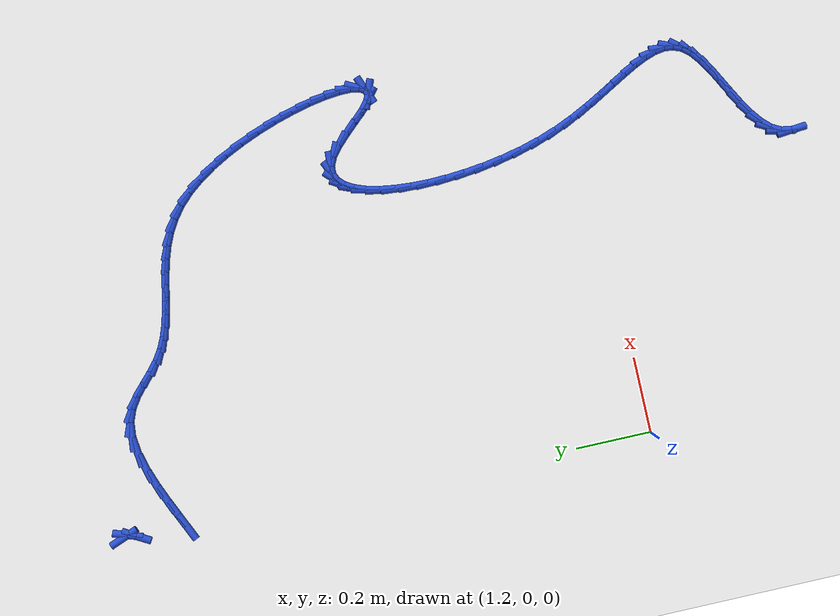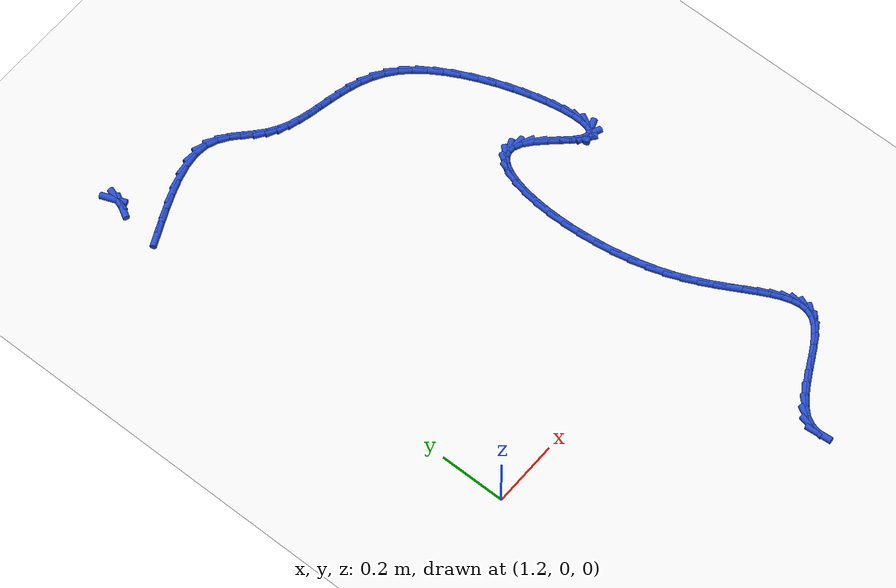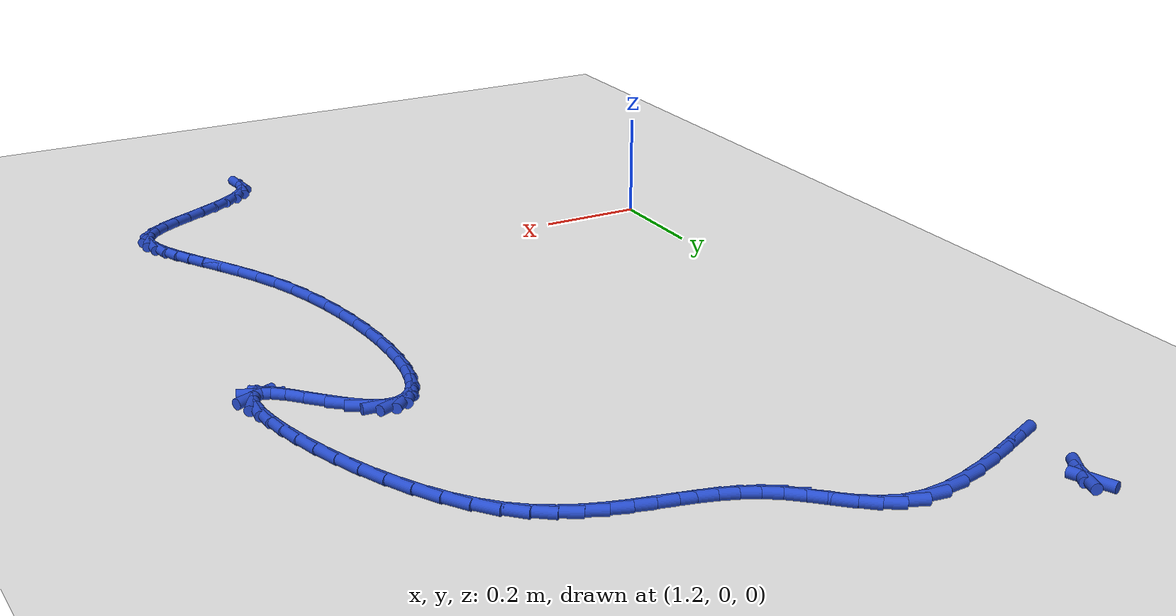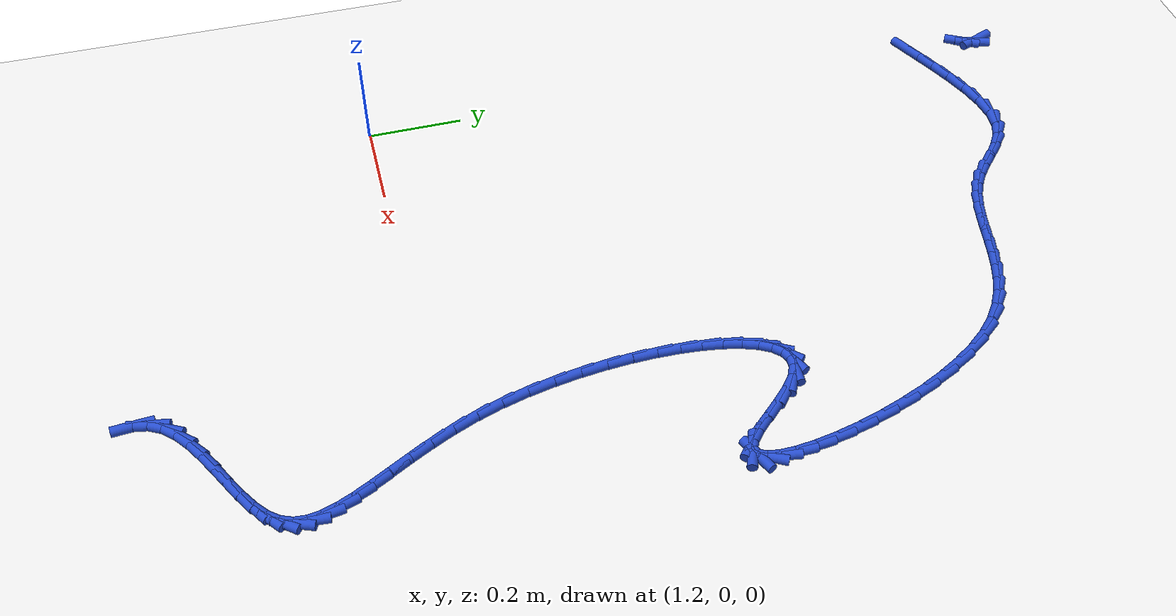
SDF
<sdf version="1.6">
 <world name="default">
  <model name="ground_plane">
   <static>1</static>
   <link name="link">
    <collision name="collision">
     <geometry><plane><normal>0 0 1</normal><size>100 100</size></plane></geometry>
     <surface><friction><ode><mu>100</mu><mu2>50</mu2></ode></friction></surface>
    </collision>
    <visual name="visual">
     <cast_shadows>0</cast_shadows>
     <geometry><plane><normal>0 0 1</normal><size>100 100</size></plane></geometry>
     <material>
      <script><uri>file://media/materials/scripts/gazebo.material</uri><name>Gazebo/WhiteGlow</name></script>
     </material>
    </visual>
   </link>
  </model>
  <model name="line">
   <link name="link_60">
    <pose>1.2385042066645906 1.4053721691312089 0.01 0 1.57 -1.2046894658953824</pose>
    <collision name="collision">
     <geometry><cylinder><radius>0.01</radius><length>0.08</length></cylinder></geometry>
    </collision>
    <visual name="visual">
     <material>
      <script><name>Gazebo/Blue</name><uri>file://media/materials/scripts/gazebo.material</uri></script>
     </material>
     <geometry><cylinder><radius>0.01</radius><length>0.08</length></cylinder></geometry>
    </visual>
   </link>
   <link name="link_61">
    <pose>1.242721266232431 1.394372801080817 0.01 0 1.57 1.2348689751261193</pose>
    <collision name="collision">
     <geometry><cylinder><radius>0.01</radius><length>0.08</length></cylinder></geometry>
    </collision>
    <visual name="visual">
     <material>
      <script><name>Gazebo/Blue</name><uri>file://media/materials/scripts/gazebo.material</uri></script>
     </material>
     <geometry><cylinder><radius>0.01</radius><length>0.08</length></cylinder></geometry>
    </visual>
   </link>
   <link name="link_62">
    <pose>1.2351722170475903 1.3727522731677408 0.01 0 1.57 1.0527649954211737</pose>
    <collision name="collision">
     <geometry><cylinder><radius>0.01</radius><length>0.08</length></cylinder></geometry>
    </collision>
    <visual name="visual">
     <material>
      <script><name>Gazebo/Blue</name><uri>file://media/materials/scripts/gazebo.material</uri></script>
     </material>
     <geometry><cylinder><radius>0.01</radius><length>0.08</length></cylinder></geometry>
    </visual>
   </link>
   <link name="link_71">
    <pose>1.2289863362273763 1.2381242181041978 0.01 0 1.57 0.4261892374639192</pose>
    <collision name="collision">
     <geometry><cylinder><radius>0.01</radius><length>0.08</length></cylinder></geometry>
    </collision>
    <visual name="visual">
     <material>
      <script><name>Gazebo/Blue</name><uri>file://media/materials/scripts/gazebo.material</uri></script>
     </material>
     <geometry><cylinder><radius>0.01</radius><length>0.08</length></cylinder></geometry>
    </visual>
   </link>
   <link name="link_72">
    <pose>1.2680139789110771 1.2558434218094288 0.01 0 1.57 0.41933460419938257</pose>
    <collision name="collision">
     <geometry><cylinder><radius>0.01</radius><length>0.08</length></cylinder></geometry>
    </collision>
    <visual name="visual">
     <material>
      <script><name>Gazebo/Blue</name><uri>file://media/materials/scripts/gazebo.material</uri></script>
     </material>
     <geometry><cylinder><radius>0.01</radius><length>0.08</length></cylinder></geometry>
    </visual>
   </link>
   <link name="link_73">
    <pose>1.3111947141028244 1.2750923006333374 0.01 0 1.57 0.38961680345681954</pose>
    <collision name="collision">
     <geometry><cylinder><radius>0.01</radius><length>0.08</length></cylinder></geometry>
    </collision>
    <visual name="visual">
     <material>
      <script><name>Gazebo/Blue</name><uri>file://media/materials/scripts/gazebo.material</uri></script>
     </material>
     <geometry><cylinder><radius>0.01</radius><length>0.08</length></cylinder></geometry>
    </visual>
   </link>
   <link name="link_74">
    <pose>1.3567951283821853 1.2938161518496252 0.01 0 1.57 0.33559241292047726</pose>
    <collision name="collision">
     <geometry><cylinder><radius>0.01</radius><length>0.08</length></cylinder></geometry>
    </collision>
    <visual name="visual">
     <material>
      <script><name>Gazebo/Blue</name><uri>file://media/materials/scripts/gazebo.material</uri></script>
     </material>
     <geometry><cylinder><radius>0.01</radius><length>0.08</length></cylinder></geometry>
    </visual>
   </link>
   <link name="link_75">
    <pose>1.4030818083287293 1.3099602727319932 0.01 0 1.57 0.2491311210069129</pose>
    <collision name="collision">
     <geometry><cylinder><radius>0.01</radius><length>0.08</length></cylinder></geometry>
    </collision>
    <visual name="visual">
     <material>
      <script><name>Gazebo/Blue</name><uri>file://media/materials/scripts/gazebo.material</uri></script>
     </material>
     <geometry><cylinder><radius>0.01</radius><length>0.08</length></cylinder></geometry>
    </visual>
   </link>
   <link name="link_76">
    <pose>1.448321340522023 1.3214699605541422 0.01 0 1.57 0.11305027568607978</pose>
    <collision name="collision">
     <geometry><cylinder><radius>0.01</radius><length>0.08</length></cylinder></geometry>
    </collision>
    <visual name="visual">
     <material>
      <script><name>Gazebo/Blue</name><uri>file://media/materials/scripts/gazebo.material</uri></script>
     </material>
     <geometry><cylinder><radius>0.01</radius><length>0.08</length></cylinder></geometry>
    </visual>
   </link>
   <link name="link_77">
    <pose>1.4907803115416356 1.3262905125897737 0.01 0 1.57 -0.10230702233685758</pose>
    <collision name="collision">
     <geometry><cylinder><radius>0.01</radius><length>0.08</length></cylinder></geometry>
    </collision>
    <visual name="visual">
     <material>
      <script><name>Gazebo/Blue</name><uri>file://media/materials/scripts/gazebo.material</uri></script>
     </material>
     <geometry><cylinder><radius>0.01</radius><length>0.08</length></cylinder></geometry>
    </visual>
   </link>
   <link name="link_78">
    <pose>1.5287422347250164 1.3223931341706687 0.01 0 1.57 -0.374079910380433</pose>
    <collision name="collision">
     <geometry><cylinder><radius>0.01</radius><length>0.08</length></cylinder></geometry>
    </collision>
    <visual name="visual">
     <material>
      <script><name>Gazebo/Blue</name><uri>file://media/materials/scripts/gazebo.material</uri></script>
     </material>
     <geometry><cylinder><radius>0.01</radius><length>0.08</length></cylinder></geometry>
    </visual>
   </link>
   <link name="link_79">
    <pose>1.561624599189698 1.309484691443154 0.01 0 1.57 -0.5891040869339764</pose>
    <collision name="collision">
     <geometry><cylinder><radius>0.01</radius><length>0.08</length></cylinder></geometry>
    </collision>
    <visual name="visual">
     <material>
      <script><name>Gazebo/Blue</name><uri>file://media/materials/scripts/gazebo.material</uri></script>
     </material>
     <geometry><cylinder><radius>0.01</radius><length>0.08</length></cylinder></geometry>
    </visual>
   </link>
   <link name="link_80">
    <pose>1.5906742254262527 1.290072021096816 0.01 0 1.57 -0.7157350560996167</pose>
    <collision name="collision">
     <geometry><cylinder><radius>0.01</radius><length>0.08</length></cylinder></geometry>
    </collision>
    <visual name="visual">
     <material>
      <script><name>Gazebo/Blue</name><uri>file://media/materials/scripts/gazebo.material</uri></script>
     </material>
     <geometry><cylinder><radius>0.01</radius><length>0.08</length></cylinder></geometry>
    </visual>
   </link>
   <link name="link_81">
    <pose>1.6173039809465752 1.2669161110238878 0.01 0 1.57 -0.7555725424011854</pose>
    <collision name="collision">
     <geometry><cylinder><radius>0.01</radius><length>0.08</length></cylinder></geometry>
    </collision>
    <visual name="visual">
     <material>
      <script><name>Gazebo/Blue</name><uri>file://media/materials/scripts/gazebo.material</uri></script>
     </material>
     <geometry><cylinder><radius>0.01</radius><length>0.08</length></cylinder></geometry>
    </visual>
   </link>
   <link name="link_82">
    <pose>1.6429267332625608 1.2427779491166044 0.01 0 1.57 -0.7097145401557308</pose>
    <collision name="collision">
     <geometry><cylinder><radius>0.01</radius><length>0.08</length></cylinder></geometry>
    </collision>
    <visual name="visual">
     <material>
      <script><name>Gazebo/Blue</name><uri>file://media/materials/scripts/gazebo.material</uri></script>
     </material>
     <geometry><cylinder><radius>0.01</radius><length>0.08</length></cylinder></geometry>
    </visual>
   </link>
   <link name="link_83">
    <pose>1.6689553498861043 1.2204185232671982 0.01 0 1.57 -0.5828367995028781</pose>
    <collision name="collision">
     <geometry><cylinder><radius>0.01</radius><length>0.08</length></cylinder></geometry>
    </collision>
    <visual name="visual">
     <material>
      <script><name>Gazebo/Blue</name><uri>file://media/materials/scripts/gazebo.material</uri></script>
     </material>
     <geometry><cylinder><radius>0.01</radius><length>0.08</length></cylinder></geometry>
    </visual>
   </link>
   <link name="link_84">
    <pose>1.6966120816576111 1.2021863623528262 0.01 0 1.57 -0.4488596513356843</pose>
    <collision name="collision">
     <geometry><cylinder><radius>0.01</radius><length>0.08</length></cylinder></geometry>
    </collision>
    <visual name="visual">
     <material>
      <script><name>Gazebo/Blue</name><uri>file://media/materials/scripts/gazebo.material</uri></script>
     </material>
     <geometry><cylinder><radius>0.01</radius><length>0.08</length></cylinder></geometry>
    </visual>
   </link>
   <link name="link_85">
    <pose>1.7260088415278938 1.188027430623055 0.01 0 1.57 -0.34274368351698703</pose>
    <collision name="collision">
     <geometry><cylinder><radius>0.01</radius><length>0.08</length></cylinder></geometry>
    </collision>
    <visual name="visual">
     <material>
      <script><name>Gazebo/Blue</name><uri>file://media/materials/scripts/gazebo.material</uri></script>
     </material>
     <geometry><cylinder><radius>0.01</radius><length>0.08</length></cylinder></geometry>
    </visual>
   </link>
   <link name="link_86">
    <pose>1.7568565974621981 1.1770201219698524 0.01 0 1.57 -0.26766737884194924</pose>
    <collision name="collision">
     <geometry><cylinder><radius>0.01</radius><length>0.08</length></cylinder></geometry>
    </collision>
    <visual name="visual">
     <material>
      <script><name>Gazebo/Blue</name><uri>file://media/materials/scripts/gazebo.material</uri></script>
     </material>
     <geometry><cylinder><radius>0.01</radius><length>0.08</length></cylinder></geometry>
    </visual>
   </link>
   <link name="link_87">
    <pose>1.7888657740358302 1.1682416544904506 0.01 0 1.57 -0.2234606583939659</pose>
    <collision name="collision">
     <geometry><cylinder><radius>0.01</radius><length>0.08</length></cylinder></geometry>
    </collision>
    <visual name="visual">
     <material>
      <script><name>Gazebo/Blue</name><uri>file://media/materials/scripts/gazebo.material</uri></script>
     </material>
     <geometry><cylinder><radius>0.01</radius><length>0.08</length></cylinder></geometry>
    </visual>
   </link>
   <link name="link_88">
    <pose>1.8217467958240954 1.1607692462820798 0.01 0 1.57 -0.20876146430850315</pose>
    <collision name="collision">
     <geometry><cylinder><radius>0.01</radius><length>0.08</length></cylinder></geometry>
    </collision>
    <visual name="visual">
     <material>
      <script><name>Gazebo/Blue</name><uri>file://media/materials/scripts/gazebo.material</uri></script>
     </material>
     <geometry><cylinder><radius>0.01</radius><length>0.08</length></cylinder></geometry>
    </visual>
   </link>
   <link name="link_89">
    <pose>1.8552100874023005 1.1536801154419711 0.01 0 1.57 -0.22225992390580582</pose>
    <collision name="collision">
     <geometry><cylinder><radius>0.01</radius><length>0.08</length></cylinder></geometry>
    </collision>
    <visual name="visual">
     <material>
      <script><name>Gazebo/Blue</name><uri>file://media/materials/scripts/gazebo.material</uri></script>
     </material>
     <geometry><cylinder><radius>0.01</radius><length>0.08</length></cylinder></geometry>
    </visual>
   </link>
   <link name="link_90">
    <pose>1.8889660733457516 1.1460514800673554 0.01 0 1.57 -0.26304809300690674</pose>
    <collision name="collision">
     <geometry><cylinder><radius>0.01</radius><length>0.08</length></cylinder></geometry>
    </collision>
    <visual name="visual">
     <material>
      <script><name>Gazebo/Blue</name><uri>file://media/materials/scripts/gazebo.material</uri></script>
     </material>
     <geometry><cylinder><radius>0.01</radius><length>0.08</length></cylinder></geometry>
    </visual>
   </link>
   <link name="link_91">
    <pose>1.9227251782297547 1.1369605582554636 0.01 0 1.57 -0.33028809346728794</pose>
    <collision name="collision">
     <geometry><cylinder><radius>0.01</radius><length>0.08</length></cylinder></geometry>
    </collision>
    <visual name="visual">
     <material>
      <script><name>Gazebo/Blue</name><uri>file://media/materials/scripts/gazebo.material</uri></script>
     </material>
     <geometry><cylinder><radius>0.01</radius><length>0.08</length></cylinder></geometry>
    </visual>
   </link>
   <link name="link_92">
    <pose>1.9561978266296154 1.1254845681035266 0.01 0 1.57 -0.42235740653796067</pose>
    <collision name="collision">
     <geometry><cylinder><radius>0.01</radius><length>0.08</length></cylinder></geometry>
    </collision>
    <visual name="visual">
     <material>
      <script><name>Gazebo/Blue</name><uri>file://media/materials/scripts/gazebo.material</uri></script>
     </material>
     <geometry><cylinder><radius>0.01</radius><length>0.08</length></cylinder></geometry>
    </visual>
   </link>
   <link name="link_93">
    <pose>1.9890944431206403 1.1107007277087757 0.01 0 1.57 -0.5357203083800188</pose>
    <collision name="collision">
     <geometry><cylinder><radius>0.01</radius><length>0.08</length></cylinder></geometry>
    </collision>
    <visual name="visual">
     <material>
      <script><name>Gazebo/Blue</name><uri>file://media/materials/scripts/gazebo.material</uri></script>
     </material>
     <geometry><cylinder><radius>0.01</radius><length>0.08</length></cylinder></geometry>
    </visual>
   </link>
   <link name="link_94">
    <pose>2.021125452278136 1.0916862551684412 0.01 0 1.57 -0.6641304443680188</pose>
    <collision name="collision">
     <geometry><cylinder><radius>0.01</radius><length>0.08</length></cylinder></geometry>
    </collision>
    <visual name="visual">
     <material>
      <script><name>Gazebo/Blue</name><uri>file://media/materials/scripts/gazebo.material</uri></script>
     </material>
     <geometry><cylinder><radius>0.01</radius><length>0.08</length></cylinder></geometry>
    </visual>
   </link>
   <link name="link_95">
    <pose>2.052001278677407 1.0675183685797547 0.01 0 1.57 -0.7986546403188867</pose>
    <collision name="collision">
     <geometry><cylinder><radius>0.01</radius><length>0.08</length></cylinder></geometry>
    </collision>
    <visual name="visual">
     <material>
      <script><name>Gazebo/Blue</name><uri>file://media/materials/scripts/gazebo.material</uri></script>
     </material>
     <geometry><cylinder><radius>0.01</radius><length>0.08</length></cylinder></geometry>
    </visual>
   </link>
   <link name="link_96">
    <pose>2.0814332812814436 1.037295506308682 0.01 0 1.57 -0.9183482344592655</pose>
    <collision name="collision">
     <geometry><cylinder><radius>0.01</radius><length>0.08</length></cylinder></geometry>
    </collision>
    <visual name="visual">
     <material>
      <script><name>Gazebo/Blue</name><uri>file://media/materials/scripts/gazebo.material</uri></script>
     </material>
     <geometry><cylinder><radius>0.01</radius><length>0.08</length></cylinder></geometry>
    </visual>
   </link>
   <link name="link_97">
    <pose>2.1091714130668673 1.0009925901723473 0.01 0 1.57 -1.0109510828171921</pose>
    <collision name="collision">
     <geometry><cylinder><radius>0.01</radius><length>0.08</length></cylinder></geometry>
    </collision>
    <visual name="visual">
     <material>
      <script><name>Gazebo/Blue</name><uri>file://media/materials/scripts/gazebo.material</uri></script>
     </material>
     <geometry><cylinder><radius>0.01</radius><length>0.08</length></cylinder></geometry>
    </visual>
   </link>
   <link name="link_98">
    <pose>2.1350171160579285 0.9597538761387163 0.01 0 1.57 -1.0845611030074251</pose>
    <collision name="collision">
     <geometry><cylinder><radius>0.01</radius><length>0.08</length></cylinder></geometry>
    </collision>
    <visual name="visual">
     <material>
      <script><name>Gazebo/Blue</name><uri>file://media/materials/scripts/gazebo.material</uri></script>
     </material>
     <geometry><cylinder><radius>0.01</radius><length>0.08</length></cylinder></geometry>
    </visual>
   </link>
   <link name="link_99">
    <pose>2.1587754130440895 0.9148049405971295 0.01 0 1.57 -1.1456515527131634</pose>
    <collision name="collision">
     <geometry><cylinder><radius>0.01</radius><length>0.08</length></cylinder></geometry>
    </collision>
    <visual name="visual">
     <material>
      <script><name>Gazebo/Blue</name><uri>file://media/materials/scripts/gazebo.material</uri></script>
     </material>
     <geometry><cylinder><radius>0.01</radius><length>0.08</length></cylinder></geometry>
    </visual>
   </link>
   <link name="link_100">
    <pose>2.18025132681481 0.867371359936929 0.01 0 1.57 -1.1987901679226376</pose>
    <collision name="collision">
     <geometry><cylinder><radius>0.01</radius><length>0.08</length></cylinder></geometry>
    </collision>
    <visual name="visual">
     <material>
      <script><name>Gazebo/Blue</name><uri>file://media/materials/scripts/gazebo.material</uri></script>
     </material>
     <geometry><cylinder><radius>0.01</radius><length>0.08</length></cylinder></geometry>
    </visual>
   </link>
   <link name="link_101">
    <pose>2.1992498801595524 0.8186787105474562 0.01 0 1.57 -1.2474919386697605</pose>
    <collision name="collision">
     <geometry><cylinder><radius>0.01</radius><length>0.08</length></cylinder></geometry>
    </collision>
    <visual name="visual">
     <material>
      <script><name>Gazebo/Blue</name><uri>file://media/materials/scripts/gazebo.material</uri></script>
     </material>
     <geometry><cylinder><radius>0.01</radius><length>0.08</length></cylinder></geometry>
    </visual>
   </link>
   <link name="link_102">
    <pose>2.21557609586778 0.7699525688180515 0.01 0 1.57 -1.294876183848476</pose>
    <collision name="collision">
     <geometry><cylinder><radius>0.01</radius><length>0.08</length></cylinder></geometry>
    </collision>
    <visual name="visual">
     <material>
      <script><name>Gazebo/Blue</name><uri>file://media/materials/scripts/gazebo.material</uri></script>
     </material>
     <geometry><cylinder><radius>0.01</radius><length>0.08</length></cylinder></geometry>
    </visual>
   </link>
   <link name="link_103">
    <pose>2.2290349967289527 0.7224185111380577 0.01 0 1.57 -1.3443103755115244</pose>
    <collision name="collision">
     <geometry><cylinder><radius>0.01</radius><length>0.08</length></cylinder></geometry>
    </collision>
    <visual name="visual">
     <material>
      <script><name>Gazebo/Blue</name><uri>file://media/materials/scripts/gazebo.material</uri></script>
     </material>
     <geometry><cylinder><radius>0.01</radius><length>0.08</length></cylinder></geometry>
    </visual>
   </link>
   <link name="link_104">
    <pose>2.2394316055325327 0.6773021138968153 0.01 0 1.57 -1.4003235109231205</pose>
    <collision name="collision">
     <geometry><cylinder><radius>0.01</radius><length>0.08</length></cylinder></geometry>
    </collision>
    <visual name="visual">
     <material>
      <script><name>Gazebo/Blue</name><uri>file://media/materials/scripts/gazebo.material</uri></script>
     </material>
     <geometry><cylinder><radius>0.01</radius><length>0.08</length></cylinder></geometry>
    </visual>
   </link>
   <link name="link_105">
    <pose>2.2465709450679823 0.6358289534836659 0.01 0 1.57 -1.4704066537792737</pose>
    <collision name="collision">
     <geometry><cylinder><radius>0.01</radius><length>0.08</length></cylinder></geometry>
    </collision>
    <visual name="visual">
     <material>
      <script><name>Gazebo/Blue</name><uri>file://media/materials/scripts/gazebo.material</uri></script>
     </material>
     <geometry><cylinder><radius>0.01</radius><length>0.08</length></cylinder></geometry>
    </visual>
   </link>
   <link name="link_106">
    <pose>2.250258038124763 0.5992246062879505 0.01 0 1.57 -1.5694895617899398</pose>
    <collision name="collision">
     <geometry><cylinder><radius>0.01</radius><length>0.08</length></cylinder></geometry>
    </collision>
    <visual name="visual">
     <material>
      <script><name>Gazebo/Blue</name><uri>file://media/materials/scripts/gazebo.material</uri></script>
     </material>
     <geometry><cylinder><radius>0.01</radius><length>0.08</length></cylinder></geometry>
    </visual>
   </link>
   <link name="link_107">
    <pose>2.250297907492337 0.5687146486990106 0.01 0 1.57 1.4082780924493747</pose>
    <collision name="collision">
     <geometry><cylinder><radius>0.01</radius><length>0.08</length></cylinder></geometry>
    </collision>
    <visual name="visual">
     <material>
      <script><name>Gazebo/Blue</name><uri>file://media/materials/scripts/gazebo.material</uri></script>
     </material>
     <geometry><cylinder><radius>0.01</radius><length>0.08</length></cylinder></geometry>
    </visual>
   </link>
   <link name="link_108">
    <pose>2.246495575960165 0.545524657106188 0.01 0 1.57 1.0792912766523763</pose>
    <collision name="collision">
     <geometry><cylinder><radius>0.01</radius><length>0.08</length></cylinder></geometry>
    </collision>
    <visual name="visual">
     <material>
      <script><name>Gazebo/Blue</name><uri>file://media/materials/scripts/gazebo.material</uri></script>
     </material>
     <geometry><cylinder><radius>0.01</radius><length>0.08</length></cylinder></geometry>
    </visual>
   </link>
   <link name="link_109">
    <pose>2.238656066317709 0.5308802078988237 0.01 0 1.57 0.3836919063397347</pose>
    <collision name="collision">
     <geometry><cylinder><radius>0.01</radius><length>0.08</length></cylinder></geometry>
    </collision>
    <visual name="visual">
     <material>
      <script><name>Gazebo/Blue</name><uri>file://media/materials/scripts/gazebo.material</uri></script>
     </material>
     <geometry><cylinder><radius>0.01</radius><length>0.08</length></cylinder></geometry>
    </visual>
   </link>
   <link name="link_110">
    <pose>2.226584401354431 0.526006877466259 0.01 0 1.57 -0.3553823284577421</pose>
    <collision name="collision">
     <geometry><cylinder><radius>0.01</radius><length>0.08</length></cylinder></geometry>
    </collision>
    <visual name="visual">
     <material>
      <script><name>Gazebo/Blue</name><uri>file://media/materials/scripts/gazebo.material</uri></script>
     </material>
     <geometry><cylinder><radius>0.01</radius><length>0.08</length></cylinder></geometry>
    </visual>
   </link>
   <link name="link_111">
    <pose>2.2100856038597927 0.5321302421978354 0.01 0 1.57 -0.6986953365020279</pose>
    <collision name="collision">
     <geometry><cylinder><radius>0.01</radius><length>0.08</length></cylinder></geometry>
    </collision>
    <visual name="visual">
     <material>
      <script><name>Gazebo/Blue</name><uri>file://media/materials/scripts/gazebo.material</uri></script>
     </material>
     <geometry><cylinder><radius>0.01</radius><length>0.08</length></cylinder></geometry>
    </visual>
   </link>
   <link name="link_112">
    <pose>2.189180605358662 0.549691707169173 0.01 0 1.57 -0.8113289779576883</pose>
    <collision name="collision">
     <geometry><cylinder><radius>0.01</radius><length>0.08</length></cylinder></geometry>
    </collision>
    <visual name="visual">
     <material>
      <script><name>Gazebo/Blue</name><uri>file://media/materials/scripts/gazebo.material</uri></script>
     </material>
     <geometry><cylinder><radius>0.01</radius><length>0.08</length></cylinder></geometry>
    </visual>
   </link>
   <link name="link_113">
    <pose>2.164977659938133 0.5751835683082018 0.01 0 1.57 -0.8332926058131561</pose>
    <collision name="collision">
     <geometry><cylinder><radius>0.01</radius><length>0.08</length></cylinder></geometry>
    </collision>
    <visual name="visual">
     <material>
      <script><name>Gazebo/Blue</name><uri>file://media/materials/scripts/gazebo.material</uri></script>
     </material>
     <geometry><cylinder><radius>0.01</radius><length>0.08</length></cylinder></geometry>
    </visual>
   </link>
   <link name="link_114">
    <pose>2.1389265441461855 0.6038577265383765 0.01 0 1.57 -0.7976932239954626</pose>
    <collision name="collision">
     <geometry><cylinder><radius>0.01</radius><length>0.08</length></cylinder></geometry>
    </collision>
    <visual name="visual">
     <material>
      <script><name>Gazebo/Blue</name><uri>file://media/materials/scripts/gazebo.material</uri></script>
     </material>
     <geometry><cylinder><radius>0.01</radius><length>0.08</length></cylinder></geometry>
    </visual>
   </link>
   <link name="link_115">
    <pose>2.112477157342166 0.630965636737518 0.01 0 1.57 -0.6860470212012354</pose>
    <collision name="collision">
     <geometry><cylinder><radius>0.01</radius><length>0.08</length></cylinder></geometry>
    </collision>
    <visual name="visual">
     <material>
      <script><name>Gazebo/Blue</name><uri>file://media/materials/scripts/gazebo.material</uri></script>
     </material>
     <geometry><cylinder><radius>0.01</radius><length>0.08</length></cylinder></geometry>
    </visual>
   </link>
   <link name="link_116">
    <pose>2.0870792900496493 0.6517591758311445 0.01 0 1.57 -0.4388906714517904</pose>
    <collision name="collision">
     <geometry><cylinder><radius>0.01</radius><length>0.08</length></cylinder></geometry>
    </collision>
    <visual name="visual">
     <material>
      <script><name>Gazebo/Blue</name><uri>file://media/materials/scripts/gazebo.material</uri></script>
     </material>
     <geometry><cylinder><radius>0.01</radius><length>0.08</length></cylinder></geometry>
    </visual>
   </link>
   <link name="link_117">
    <pose>2.063884296233639 0.6626475099328232 0.01 0 1.57 -0.05154768172381478</pose>
    <collision name="collision">
     <geometry><cylinder><radius>0.01</radius><length>0.08</length></cylinder></geometry>
    </collision>
    <visual name="visual">
     <material>
      <script><name>Gazebo/Blue</name><uri>file://media/materials/scripts/gazebo.material</uri></script>
     </material>
     <geometry><cylinder><radius>0.01</radius><length>0.08</length></cylinder></geometry>
    </visual>
   </link>
   <link name="link_118">
    <pose>2.0430944647306144 0.6637201277588787 0.01 0 1.57 0.40721393788235904</pose>
    <collision name="collision">
     <geometry><cylinder><radius>0.01</radius><length>0.08</length></cylinder></geometry>
    </collision>
    <visual name="visual">
     <material>
      <script><name>Gazebo/Blue</name><uri>file://media/materials/scripts/gazebo.material</uri></script>
     </material>
     <geometry><cylinder><radius>0.01</radius><length>0.08</length></cylinder></geometry>
    </visual>
   </link>
   <link name="link_119">
    <pose>2.0247238497161435 0.6557964619002551 0.01 0 1.57 0.7904912371703323</pose>
    <collision name="collision">
     <geometry><cylinder><radius>0.01</radius><length>0.08</length></cylinder></geometry>
    </collision>
    <visual name="visual">
     <material>
      <script><name>Gazebo/Blue</name><uri>file://media/materials/scripts/gazebo.material</uri></script>
     </material>
     <geometry><cylinder><radius>0.01</radius><length>0.08</length></cylinder></geometry>
    </visual>
   </link>
   <link name="link_120">
    <pose>2.0087865053657943 0.6396959449478968 0.01 0 1.57 1.0489073732488041</pose>
    <collision name="collision">
     <geometry><cylinder><radius>0.01</radius><length>0.08</length></cylinder></geometry>
    </collision>
    <visual name="visual">
     <material>
      <script><name>Gazebo/Blue</name><uri>file://media/materials/scripts/gazebo.material</uri></script>
     </material>
     <geometry><cylinder><radius>0.01</radius><length>0.08</length></cylinder></geometry>
    </visual>
   </link>
   <link name="link_121">
    <pose>1.9952964858551316 0.6162380094927482 0.01 0 1.57 1.2184662154550183</pose>
    <collision name="collision">
     <geometry><cylinder><radius>0.01</radius><length>0.08</length></cylinder></geometry>
    </collision>
    <visual name="visual">
     <material>
      <script><name>Gazebo/Blue</name><uri>file://media/materials/scripts/gazebo.material</uri></script>
     </material>
     <geometry><cylinder><radius>0.01</radius><length>0.08</length></cylinder></geometry>
    </visual>
   </link>
   <link name="link_122">
    <pose>1.9842678453597251 0.5862420881257535 0.01 0 1.57 1.335735009082989</pose>
    <collision name="collision">
     <geometry><cylinder><radius>0.01</radius><length>0.08</length></cylinder></geometry>
    </collision>
    <visual name="visual">
     <material>
      <script><name>Gazebo/Blue</name><uri>file://media/materials/scripts/gazebo.material</uri></script>
     </material>
     <geometry><cylinder><radius>0.01</radius><length>0.08</length></cylinder></geometry>
    </visual>
   </link>
   <link name="link_123">
    <pose>1.9757146380551405 0.5505276134378564 0.01 0 1.57 1.4225883931406884</pose>
    <collision name="collision">
     <geometry><cylinder><radius>0.01</radius><length>0.08</length></cylinder></geometry>
    </collision>
    <visual name="visual">
     <material>
      <script><name>Gazebo/Blue</name><uri>file://media/materials/scripts/gazebo.material</uri></script>
     </material>
     <geometry><cylinder><radius>0.01</radius><length>0.08</length></cylinder></geometry>
    </visual>
   </link>
   <link name="link_124">
    <pose>1.9696509181169455 0.5099140180200024 0.01 0 1.57 1.491306157314575</pose>
    <collision name="collision">
     <geometry><cylinder><radius>0.01</radius><length>0.08</length></cylinder></geometry>
    </collision>
    <visual name="visual">
     <material>
      <script><name>Gazebo/Blue</name><uri>file://media/materials/scripts/gazebo.material</uri></script>
     </material>
     <geometry><cylinder><radius>0.01</radius><length>0.08</length></cylinder></geometry>
    </visual>
   </link>
   <link name="link_125">
    <pose>1.9660907397207072 0.465220734463135 0.01 0 1.57 1.5490582346601285</pose>
    <collision name="collision">
     <geometry><cylinder><radius>0.01</radius><length>0.08</length></cylinder></geometry>
    </collision>
    <visual name="visual">
     <material>
      <script><name>Gazebo/Blue</name><uri>file://media/materials/scripts/gazebo.material</uri></script>
     </material>
     <geometry><cylinder><radius>0.01</radius><length>0.08</length></cylinder></geometry>
    </visual>
   </link>
   <link name="link_126">
    <pose>1.9650481570419933 0.4172671953581981 0.01 0 1.57 -1.5412566320464443</pose>
    <collision name="collision">
     <geometry><cylinder><radius>0.01</radius><length>0.08</length></cylinder></geometry>
    </collision>
    <visual name="visual">
     <material>
      <script><name>Gazebo/Blue</name><uri>file://media/materials/scripts/gazebo.material</uri></script>
     </material>
     <geometry><cylinder><radius>0.01</radius><length>0.08</length></cylinder></geometry>
    </visual>
   </link>
   <link name="link_127">
    <pose>1.9665372242563708 0.3668728332961373 0.01 0 1.57 -1.4933830817702956</pose>
    <collision name="collision">
     <geometry><cylinder><radius>0.01</radius><length>0.08</length></cylinder></geometry>
    </collision>
    <visual name="visual">
     <material>
      <script><name>Gazebo/Blue</name><uri>file://media/materials/scripts/gazebo.material</uri></script>
     </material>
     <geometry><cylinder><radius>0.01</radius><length>0.08</length></cylinder></geometry>
    </visual>
   </link>
   <link name="link_128">
    <pose>1.970571995539406 0.31485708086789604 0.01 0 1.57 -1.4465845827671178</pose>
    <collision name="collision">
     <geometry><cylinder><radius>0.01</radius><length>0.08</length></cylinder></geometry>
    </collision>
    <visual name="visual">
     <material>
      <script><name>Gazebo/Blue</name><uri>file://media/materials/scripts/gazebo.material</uri></script>
     </material>
     <geometry><cylinder><radius>0.01</radius><length>0.08</length></cylinder></geometry>
    </visual>
   </link>
   <link name="link_129">
    <pose>1.977166525066668 0.2620393706644189 0.01 0 1.57 -1.39886854667559</pose>
    <collision name="collision">
     <geometry><cylinder><radius>0.01</radius><length>0.08</length></cylinder></geometry>
    </collision>
    <visual name="visual">
     <material>
      <script><name>Gazebo/Blue</name><uri>file://media/materials/scripts/gazebo.material</uri></script>
     </material>
     <geometry><cylinder><radius>0.01</radius><length>0.08</length></cylinder></geometry>
    </visual>
   </link>
   <link name="link_130">
    <pose>1.986334867013722 0.20923913527664986 0.01 0 1.57 -1.348301486773667</pose>
    <collision name="collision">
     <geometry><cylinder><radius>0.01</radius><length>0.08</length></cylinder></geometry>
    </collision>
    <visual name="visual">
     <material>
      <script><name>Gazebo/Blue</name><uri>file://media/materials/scripts/gazebo.material</uri></script>
     </material>
     <geometry><cylinder><radius>0.01</radius><length>0.08</length></cylinder></geometry>
    </visual>
   </link>
   <link name="link_131">
    <pose>1.998091075556137 0.15727580729553348 0.01 0 1.57 -1.2927777929175053</pose>
    <collision name="collision">
     <geometry><cylinder><radius>0.01</radius><length>0.08</length></cylinder></geometry>
    </collision>
    <visual name="visual">
     <material>
      <script><name>Gazebo/Blue</name><uri>file://media/materials/scripts/gazebo.material</uri></script>
     </material>
     <geometry><cylinder><radius>0.01</radius><length>0.08</length></cylinder></geometry>
    </visual>
   </link>
   <link name="link_132">
    <pose>2.0124492048694784 0.10696881931201373 0.01 0 1.57 -1.2299691548390714</pose>
    <collision name="collision">
     <geometry><cylinder><radius>0.01</radius><length>0.08</length></cylinder></geometry>
    </collision>
    <visual name="visual">
     <material>
      <script><name>Gazebo/Blue</name><uri>file://media/materials/scripts/gazebo.material</uri></script>
     </material>
     <geometry><cylinder><radius>0.01</radius><length>0.08</length></cylinder></geometry>
    </visual>
   </link>
   <link name="link_133">
    <pose>2.0294159980360273 0.05913027320965443 0.01 0 1.57 -1.1666191394054677</pose>
    <collision name="collision">
     <geometry><cylinder><radius>0.01</radius><length>0.08</length></cylinder></geometry>
    </collision>
    <visual name="visual">
     <material>
      <script><name>Gazebo/Blue</name><uri>file://media/materials/scripts/gazebo.material</uri></script>
     </material>
     <geometry><cylinder><radius>0.01</radius><length>0.08</length></cylinder></geometry>
    </visual>
   </link>
   <link name="link_134">
    <pose>2.048631761655633 0.014204851319328724 0.01 0 1.57 -1.1162037999848715</pose>
    <collision name="collision">
     <geometry><cylinder><radius>0.01</radius><length>0.08</length></cylinder></geometry>
    </collision>
    <visual name="visual">
     <material>
      <script><name>Gazebo/Blue</name><uri>file://media/materials/scripts/gazebo.material</uri></script>
     </material>
     <geometry><cylinder><radius>0.01</radius><length>0.08</length></cylinder></geometry>
    </visual>
   </link>
   <link name="link_135">
    <pose>2.069206869397891 -0.02789411865442565 0.01 0 1.57 -1.0810425528515428</pose>
    <collision name="collision">
     <geometry><cylinder><radius>0.01</radius><length>0.08</length></cylinder></geometry>
    </collision>
    <visual name="visual">
     <material>
      <script><name>Gazebo/Blue</name><uri>file://media/materials/scripts/gazebo.material</uri></script>
     </material>
     <geometry><cylinder><radius>0.01</radius><length>0.08</length></cylinder></geometry>
    </visual>
   </link>
   <link name="link_136">
    <pose>2.090210282960923 -0.06729483207794873 0.01 0 1.57 -1.062884722604099</pose>
    <collision name="collision">
     <geometry><cylinder><radius>0.01</radius><length>0.08</length></cylinder></geometry>
    </collision>
    <visual name="visual">
     <material>
      <script><name>Gazebo/Blue</name><uri>file://media/materials/scripts/gazebo.material</uri></script>
     </material>
     <geometry><cylinder><radius>0.01</radius><length>0.08</length></cylinder></geometry>
    </visual>
   </link>
   <link name="link_137">
    <pose>2.110710964042859 -0.10412548431758073 0.01 0 1.57 -1.0645419700074668</pose>
    <collision name="collision">
     <geometry><cylinder><radius>0.01</radius><length>0.08</length></cylinder></geometry>
    </collision>
    <visual name="visual">
     <material>
      <script><name>Gazebo/Blue</name><uri>file://media/materials/scripts/gazebo.material</uri></script>
     </material>
     <geometry><cylinder><radius>0.01</radius><length>0.08</length></cylinder></geometry>
    </visual>
   </link>
   <link name="link_138">
    <pose>2.129777874341823 -0.13851427073966172 0.01 0 1.57 -1.0907117553888348</pose>
    <collision name="collision">
     <geometry><cylinder><radius>0.01</radius><length>0.08</length></cylinder></geometry>
    </collision>
    <visual name="visual">
     <material>
      <script><name>Gazebo/Blue</name><uri>file://media/materials/scripts/gazebo.material</uri></script>
     </material>
     <geometry><cylinder><radius>0.01</radius><length>0.08</length></cylinder></geometry>
    </visual>
   </link>
   <link name="link_139">
    <pose>2.146479975555941 -0.17058938671053173 0.01 0 1.57 -1.1491696149221668</pose>
    <collision name="collision">
     <geometry><cylinder><radius>0.01</radius><length>0.08</length></cylinder></geometry>
    </collision>
    <visual name="visual">
     <material>
      <script><name>Gazebo/Blue</name><uri>file://media/materials/scripts/gazebo.material</uri></script>
     </material>
     <geometry><cylinder><radius>0.01</radius><length>0.08</length></cylinder></geometry>
    </visual>
   </link>
   <link name="link_140">
    <pose>2.159886229383339 -0.20047902759653174 0.01 0 1.57 -1.252220859025178</pose>
    <collision name="collision">
     <geometry><cylinder><radius>0.01</radius><length>0.08</length></cylinder></geometry>
    </collision>
    <visual name="visual">
     <material>
      <script><name>Gazebo/Blue</name><uri>file://media/materials/scripts/gazebo.material</uri></script>
     </material>
     <geometry><cylinder><radius>0.01</radius><length>0.08</length></cylinder></geometry>
    </visual>
   </link>
   <link name="link_141">
    <pose>2.1690655975221436 -0.22831138876400023 0.01 0 1.57 -1.4167773931799585</pose>
    <collision name="collision">
     <geometry><cylinder><radius>0.01</radius><length>0.08</length></cylinder></geometry>
    </collision>
    <visual name="visual">
     <material>
      <script><name>Gazebo/Blue</name><uri>file://media/materials/scripts/gazebo.material</uri></script>
     </material>
     <geometry><cylinder><radius>0.01</radius><length>0.08</length></cylinder></geometry>
    </visual>
   </link>
   <link name="link_142">
    <pose>2.1730870416704775 -0.25421466557927797 0.01 0 1.57 1.4852251676594606</pose>
    <collision name="collision">
     <geometry><cylinder><radius>0.01</radius><length>0.08</length></cylinder></geometry>
    </collision>
    <visual name="visual">
     <material>
      <script><name>Gazebo/Blue</name><uri>file://media/materials/scripts/gazebo.material</uri></script>
     </material>
     <geometry><cylinder><radius>0.01</radius><length>0.08</length></cylinder></geometry>
    </visual>
   </link>
   <link name="link_143">
    <pose>2.17101952352647 -0.27831705340870533 0.01 0 1.57 1.1858532867655187</pose>
    <collision name="collision">
     <geometry><cylinder><radius>0.01</radius><length>0.08</length></cylinder></geometry>
    </collision>
    <visual name="visual">
     <material>
      <script><name>Gazebo/Blue</name><uri>file://media/materials/scripts/gazebo.material</uri></script>
     </material>
     <geometry><cylinder><radius>0.01</radius><length>0.08</length></cylinder></geometry>
    </visual>
   </link>
   <link name="link_144">
    <pose>2.161932004788245 -0.3007467476186222 0.01 0 1.57 0.8890590452636289</pose>
    <collision name="collision">
     <geometry><cylinder><radius>0.01</radius><length>0.08</length></cylinder></geometry>
    </collision>
    <visual name="visual">
     <material>
      <script><name>Gazebo/Blue</name><uri>file://media/materials/scripts/gazebo.material</uri></script>
     </material>
     <geometry><cylinder><radius>0.01</radius><length>0.08</length></cylinder></geometry>
    </visual>
   </link>
   <link name="link_145">
    <pose>2.1449758202117053 -0.3216406164567192 0.01 0 1.57 0.6818084400295512</pose>
    <collision name="collision">
     <geometry><cylinder><radius>0.01</radius><length>0.08</length></cylinder></geometry>
    </collision>
    <visual name="visual">
     <material>
      <script><name>Gazebo/Blue</name><uri>file://media/materials/scripts/gazebo.material</uri></script>
     </material>
     <geometry><cylinder><radius>0.01</radius><length>0.08</length></cylinder></geometry>
    </visual>
   </link>
   <link name="link_146">
    <pose>2.1207671386803 -0.3412897573923442 0.01 0 1.57 0.5667556297981894</pose>
    <collision name="collision">
     <geometry><cylinder><radius>0.01</radius><length>0.08</length></cylinder></geometry>
    </collision>
    <visual name="visual">
     <material>
      <script><name>Gazebo/Blue</name><uri>file://media/materials/scripts/gazebo.material</uri></script>
     </material>
     <geometry><cylinder><radius>0.01</radius><length>0.08</length></cylinder></geometry>
    </visual>
   </link>
   <link name="link_147">
    <pose>2.0911817906268233 -0.3601178949388585 0.01 0 1.57 0.5088720145815107</pose>
    <collision name="collision">
     <geometry><cylinder><radius>0.01</radius><length>0.08</length></cylinder></geometry>
    </collision>
    <visual name="visual">
     <material>
      <script><name>Gazebo/Blue</name><uri>file://media/materials/scripts/gazebo.material</uri></script>
     </material>
     <geometry><cylinder><radius>0.01</radius><length>0.08</length></cylinder></geometry>
    </visual>
   </link>
   <link name="link_148">
    <pose>2.0581366518974966 -0.3785530751925566 0.01 0 1.57 0.49048180314125744</pose>
    <collision name="collision">
     <geometry><cylinder><radius>0.01</radius><length>0.08</length></cylinder></geometry>
    </collision>
    <visual name="visual">
     <material>
      <script><name>Gazebo/Blue</name><uri>file://media/materials/scripts/gazebo.material</uri></script>
     </material>
     <geometry><cylinder><radius>0.01</radius><length>0.08</length></cylinder></geometry>
    </visual>
   </link>
   <link name="link_149">
    <pose>2.0235485983385413 -0.39702334424973384 0.01 0 1.57 0.5054347271717956</pose>
    <collision name="collision">
     <geometry><cylinder><radius>0.01</radius><length>0.08</length></cylinder></geometry>
    </collision>
    <visual name="visual">
     <material>
      <script><name>Gazebo/Blue</name><uri>file://media/materials/scripts/gazebo.material</uri></script>
     </material>
     <geometry><cylinder><radius>0.01</radius><length>0.08</length></cylinder></geometry>
    </visual>
   </link>
   <link name="link_150">
    <pose>1.9893345057961804 -0.4159567482066835 0.01 0 1.57 0.5557232358985479</pose>
    <collision name="collision">
     <geometry><cylinder><radius>0.01</radius><length>0.08</length></cylinder></geometry>
    </collision>
    <visual name="visual">
     <material>
      <script><name>Gazebo/Blue</name><uri>file://media/materials/scripts/gazebo.material</uri></script>
     </material>
     <geometry><cylinder><radius>0.01</radius><length>0.08</length></cylinder></geometry>
    </visual>
   </link>
   <link name="link_151">
    <pose>1.9574112501166352 -0.43578133315970075 0.01 0 1.57 0.6516975498088978</pose>
    <collision name="collision">
     <geometry><cylinder><radius>0.01</radius><length>0.08</length></cylinder></geometry>
    </collision>
    <visual name="visual">
     <material>
      <script><name>Gazebo/Blue</name><uri>file://media/materials/scripts/gazebo.material</uri></script>
     </material>
     <geometry><cylinder><radius>0.01</radius><length>0.08</length></cylinder></geometry>
    </visual>
   </link>
   <link name="link_152">
    <pose>1.9296957071461271 -0.4569251452050802 0.01 0 1.57 0.8146180640498392</pose>
    <collision name="collision">
     <geometry><cylinder><radius>0.01</radius><length>0.08</length></cylinder></geometry>
    </collision>
    <visual name="visual">
     <material>
      <script><name>Gazebo/Blue</name><uri>file://media/materials/scripts/gazebo.material</uri></script>
     </material>
     <geometry><cylinder><radius>0.01</radius><length>0.08</length></cylinder></geometry>
    </visual>
   </link>
   <link name="link_153">
    <pose>1.9081047527308774 -0.47981623043911625 0.01 0 1.57 1.073233349359488</pose>
    <collision name="collision">
     <geometry><cylinder><radius>0.01</radius><length>0.08</length></cylinder></geometry>
    </collision>
    <visual name="visual">
     <material>
      <script><name>Gazebo/Blue</name><uri>file://media/materials/scripts/gazebo.material</uri></script>
     </material>
     <geometry><cylinder><radius>0.01</radius><length>0.08</length></cylinder></geometry>
    </visual>
   </link>
   <link name="link_154">
    <pose>1.8944978950479432 -0.5048683327874067 0.01 0 1.57 1.3843290911809252</pose>
    <collision name="collision">
     <geometry><cylinder><radius>0.01</radius><length>0.08</length></cylinder></geometry>
    </collision>
    <visual name="visual">
     <material>
      <script><name>Gazebo/Blue</name><uri>file://media/materials/scripts/gazebo.material</uri></script>
     </material>
     <geometry><cylinder><radius>0.01</radius><length>0.08</length></cylinder></geometry>
    </visual>
   </link>
   <link name="link_155">
    <pose>1.8893509237935255 -0.5321502252503254 0.01 0 1.57 -1.4899394339515997</pose>
    <collision name="collision">
     <geometry><cylinder><radius>0.01</radius><length>0.08</length></cylinder></geometry>
    </collision>
    <visual name="visual">
     <material>
      <script><name>Gazebo/Blue</name><uri>file://media/materials/scripts/gazebo.material</uri></script>
     </material>
     <geometry><cylinder><radius>0.01</radius><length>0.08</length></cylinder></geometry>
    </visual>
   </link>
  </model>
 </world>
</sdf>
